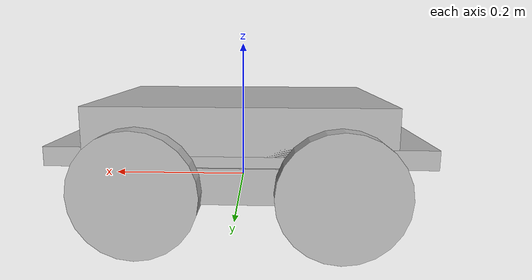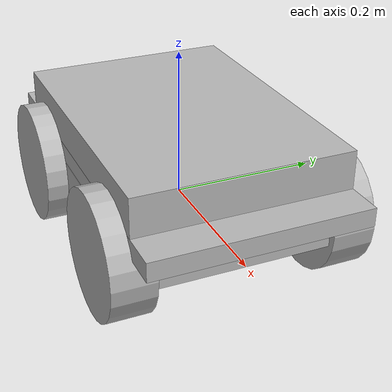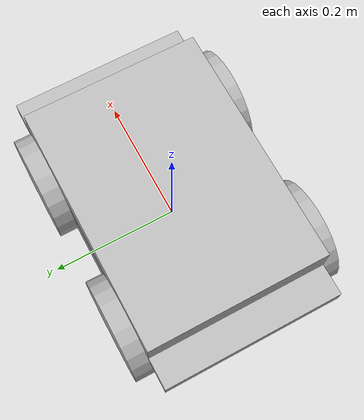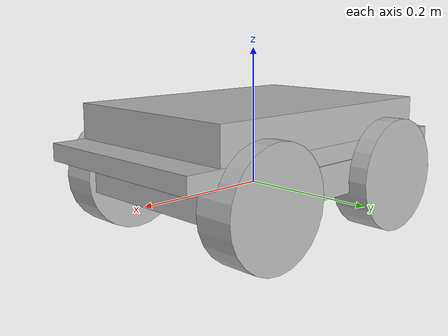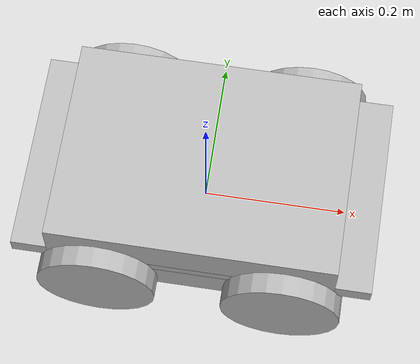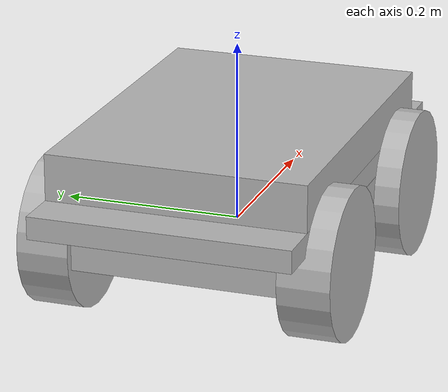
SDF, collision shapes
<?xml version="1.0" ?>
<sdf version="1.8">

  <model name="husky_seg_cam">

    <link name="base_link">
      <pose>0 0 0 0 0 0</pose>
      <inertial>
        <pose>-0.0002715 -0.0424725 0.0311645 0 -0 0</pose>
        <mass>5.133</mass>
        <inertia>
          <ixx>0.019244</ixx>
          <ixy>-0.000752</ixy>
          <ixz>-0.003771</ixz>
          <iyy>0.054497</iyy>
          <iyz>-0.000089</iyz>
          <izz>0.063638</izz>
        </inertia>
      </inertial>
      <collision name="base_link_collision">
        <pose>0 0 0.06 0 0 0</pose>
        <geometry>
          <box>
            <size>0.4937 0.28545 0.025</size>
          </box>
        </geometry>
      </collision>
      <collision name="base_link_collision_bottom">
        <pose>0 0 0.023 0 0 0</pose>
        <geometry>
          <box>
            <size>0.40 0.28545 0.0475</size>
          </box>
        </geometry>
      </collision>
      <collision name="base_link_collision_1">
        <pose>0 0 0.0928125 0 -0 0</pose>
        <geometry>
          <box>
            <size>0.39496 0.28545 0.061875</size>
          </box>
        </geometry>
      </collision>

      <visual name="base_link_visual">
        <pose>0 0 0 0 -0 0</pose>
        <geometry>
          <mesh>
            <scale>0.5 0.5 0.5</scale>
            <uri>https://fuel.ignitionrobotics.org/1.0/openrobotics/models/ctu_cras_norlab_husky_sensor_config_1/tip/files/meshes/base_link.dae</uri>
          </mesh>
        </geometry>
      </visual>
      <visual name="base_link_fixed_joint_lump__front_bumper_link_visual_3">
        <pose>0.24 0 0.0455 0 -0 0</pose>
        <geometry>
          <mesh>
            <scale>0.5 0.5 0.5</scale>
            <uri>https://fuel.ignitionrobotics.org/1.0/openrobotics/models/ctu_cras_norlab_husky_sensor_config_1/tip/files/meshes/bumper.dae</uri>
          </mesh>
        </geometry>
      </visual>
      <visual name="base_link_fixed_joint_lump__rear_bumper_link_visual_4">
        <pose>-0.24 0 0.0455 0 -0 3.14159</pose>
        <geometry>
          <mesh>
            <scale>0.5 0.5 0.5</scale>
            <uri>https://fuel.ignitionrobotics.org/1.0/openrobotics/models/ctu_cras_norlab_husky_sensor_config_1/tip/files/meshes/bumper.dae</uri>
          </mesh>
        </geometry>
      </visual>
      <visual name="base_link_fixed_joint_lump__top_chassis_link_visual_5">
        <pose>0 0 0 0 -0 0</pose>
        <geometry>
          <mesh>
            <scale>0.5 0.5 0.5</scale>
            <uri>https://fuel.ignitionrobotics.org/1.0/openrobotics/models/ctu_cras_norlab_husky_sensor_config_1/tip/files/meshes/top_chassis.dae</uri>
          </mesh>
        </geometry>
      </visual>

      <velocity_decay/>
      <self_collide>0</self_collide>
      <enable_wind>0</enable_wind>
      <kinematic>0</kinematic>

    </link>

    <link name="sensors_link">
      <!-- Position the sensors link at an appropriate height on top of the Husky -->

      <pose relative_to="base_link">0 0 0.25 0 0 0</pose> <!-- 缩放自0.5至0.25 -->

      <!-- Camera sensor definition -->
      <sensor name="rgbd_camera" type="rgbd_camera">
        <camera>
          <horizontal_fov>1.570796327</horizontal_fov>
          <image>
            <width>640</width>
            <height>480</height>
          </image>
          <clip>
            <near>0.1</near>
            <far>100</far>
          </clip>
          <lens>
            <intrinsics>
              <fx>320</fx>
              <fy>320</fy>
              <cx>320</cx>
              <cy>240</cy>
              <skew>0</skew>
            </intrinsics>
          </lens>
        </camera>
        <always_on>1</always_on>
        <update_rate>10</update_rate>
        <visualize>true</visualize>
        <!-- use default topic to enable multi robot -->
        <enable_metrics>true</enable_metrics>
      </sensor>

      <!-- Segmentation camera sensor definition -->
      <sensor name="semantic_segmentation_camera" type="segmentation">
        <camera>
          <segmentation_type>semantic</segmentation_type>
          <horizontal_fov>1.570796327</horizontal_fov>
          <image>
            <width>640</width>
            <height>480</height>
          </image>
          <clip>
            <near>0.1</near>
            <far>100</far>
          </clip>
          <lens>
            <intrinsics>
              <fx>320</fx>
              <fy>320</fy>
              <cx>320</cx>
              <cy>240</cy>
              <skew>0</skew>
            </intrinsics>
          </lens>
        </camera>
        <always_on>1</always_on>
        <update_rate>30</update_rate>
        <visualize>true</visualize>
      </sensor>
    </link>

    <!-- Joint to connect the sensors_link to the base_link of the Husky -->
    <joint name="sensors_joint" type="fixed">
      <parent>base_link</parent>
      <child>sensors_link</child>
      <pose>0 0 2.5 0 0 0</pose> <!-- 缩放自5至2.5 -->
    </joint>

    <link name="front_left_wheel_link">
      <pose relative_to="base_link">0.128 0.1427 0.01641 0 -0 0</pose>
      <inertial>
        <pose>0 0 0 0 -0 0</pose>
        <mass>0.329625</mass>
        <inertia>
          <ixx>0.000771</ixx>
          <ixy>0</ixy>
          <ixz>0</ixz>
          <iyy>0.001378</iyy>
          <iyz>0</iyz>
          <izz>0.000771</izz>
        </inertia>
      </inertial>
      <collision name="front_left_wheel_link_collision">
        <pose>0 0 0 1.5707963267948966 -0 0</pose>
        <geometry>
          <cylinder>
            <length>0.05715</length>
            <radius>0.08255</radius>
          </cylinder>
        </geometry>
        <surface>
          <contact>
            <ode>
              <kp>1e+07</kp>
              <kd>1</kd>
            </ode>
          </contact>
          <friction>
            <ode>
              <mu>0.3</mu>
              <mu2>0.3</mu2>
              <slip1>0.5</slip1>
              <slip2>0.5</slip2>
              <fdir1>1 0 0</fdir1>
              <fdir2>0 1 0</fdir2>
            </ode>
          </friction>
        </surface>
      </collision>
      <visual name="front_left_wheel_link_visual">
        <pose>0 0 0 0 -0 0</pose>
        <geometry>
          <mesh>
            <scale>0.5 0.5 0.5</scale>
            <uri>https://fuel.ignitionrobotics.org/1.0/openrobotics/models/ctu_cras_norlab_husky_sensor_config_1/tip/files/meshes/wheel.dae</uri>
          </mesh>
        </geometry>
      </visual>

      <gravity>1</gravity>
      <velocity_decay/>
    </link>
    <joint name="front_left_wheel_joint" type="revolute">
      <child>front_left_wheel_link</child>
      <parent>base_link</parent>
      <axis>
        <xyz>0 1 0</xyz>
        <limit>
          <lower>-1e+16</lower>
          <upper>1e+16</upper>
        </limit>
        <dynamics>
          <spring_reference>0</spring_reference>
          <spring_stiffness>0</spring_stiffness>
        </dynamics>
        <use_parent_model_frame>1</use_parent_model_frame>
      </axis>
    </joint>

    <link name="front_right_wheel_link">
      <pose relative_to="base_link">0.128 -0.1427 0.01641 0 -0 0</pose>
      <inertial>
        <pose>0 0 0 0 -0 0</pose>
        <mass>0.329625</mass>
        <inertia>
          <ixx>0.000771</ixx>
          <ixy>0</ixy>
          <ixz>0</ixz>
          <iyy>0.001378</iyy>
          <iyz>0</iyz>
          <izz>0.000771</izz>
        </inertia>
      </inertial>
      <collision name="front_right_wheel_link_collision">
        <pose>0 0 0 1.5707963267948966 -0 0</pose>
        <geometry>
          <cylinder>
            <length>0.05715</length>
            <radius>0.08255</radius>
          </cylinder>
        </geometry>
        <surface>
          <contact>
            <ode>
              <kp>1e+07</kp>
              <kd>1</kd>
            </ode>
          </contact>
          <friction>
            <ode>
              <mu>0.3</mu>
              <mu2>0.3</mu2>
              <slip1>0.5</slip1>
              <slip2>0.5</slip2>
              <fdir1>1 0 0</fdir1>
              <fdir2>0 1 0</fdir2>
            </ode>
          </friction>
        </surface>
      </collision>
      <visual name="front_right_wheel_link_visual">
        <pose>0 0 0 0 -0 0</pose>
        <geometry>
          <mesh>
            <scale>0.5 0.5 0.5</scale>
            <uri>https://fuel.ignitionrobotics.org/1.0/openrobotics/models/ctu_cras_norlab_husky_sensor_config_1/tip/files/meshes/wheel.dae</uri>
          </mesh>
        </geometry>
      </visual>
      <gravity>1</gravity>
      <velocity_decay/>
    </link>
    <joint name="front_right_wheel_joint" type="revolute">
      <child>front_right_wheel_link</child>
      <parent>base_link</parent>
      <axis>
        <xyz>0 1 0</xyz>
        <limit>
          <lower>-1e+16</lower>
          <upper>1e+16</upper>
        </limit>
        <dynamics>
          <spring_reference>0</spring_reference>
          <spring_stiffness>0</spring_stiffness>
        </dynamics>
        <use_parent_model_frame>1</use_parent_model_frame>
      </axis>
    </joint>

    <link name="rear_left_wheel_link">
      <pose relative_to="base_link">-0.128 0.1427 0.01641 0 -0 0</pose>
      <inertial>
        <pose>0 0 0 0 -0 0</pose>
        <mass>0.329625</mass>
        <inertia>
          <ixx>0.000771</ixx>
          <ixy>0</ixy>
          <ixz>0</ixz>
          <iyy>0.001378</iyy>
          <iyz>0</iyz>
          <izz>0.000771</izz>
        </inertia>
      </inertial>
      <collision name="rear_left_wheel_link_collision">
        <pose>0 0 0 1.5707963267948966 -0 0</pose>
        <geometry>
          <cylinder>
            <length>0.05715</length>
            <radius>0.08255</radius>
          </cylinder>
        </geometry>
        <surface>
          <contact>
            <ode>
              <kp>1e+07</kp>
              <kd>1</kd>
            </ode>
          </contact>
          <friction>
            <ode>
              <mu>1</mu>
              <mu2>1</mu2>
              <slip1>0.00062</slip1>
              <slip2>0</slip2>
              <fdir1>1 0 0</fdir1>
              <fdir2>0 1 0</fdir2>
            </ode>
          </friction>
        </surface>
      </collision>
      <visual name="rear_left_wheel_link_visual">
        <pose>0 0 0 0 -0 0</pose>
        <geometry>
          <mesh>
            <scale>0.5 0.5 0.5</scale>
            <uri>https://fuel.ignitionrobotics.org/1.0/openrobotics/models/ctu_cras_norlab_husky_sensor_config_1/tip/files/meshes/wheel.dae</uri>
          </mesh>
        </geometry>
      </visual>
      <gravity>1</gravity>
      <velocity_decay/>
    </link>
    <joint name="rear_left_wheel_joint" type="revolute">
      <child>rear_left_wheel_link</child>
      <parent>base_link</parent>
      <axis>
        <xyz>0 1 0</xyz>
        <limit>
          <lower>-1e+16</lower>
          <upper>1e+16</upper>
        </limit>
        <dynamics>
          <spring_reference>0</spring_reference>
          <spring_stiffness>0</spring_stiffness>
        </dynamics>
        <use_parent_model_frame>1</use_parent_model_frame>
      </axis>
    </joint>
    <link name="rear_right_wheel_link">
      <pose relative_to="base_link">-0.128 -0.1427 0.01641 0 -0 0</pose>
      <inertial>
        <pose>0 0 0 0 -0 0</pose>
        <mass>0.329625</mass>
        <inertia>
          <ixx>0.000771</ixx>
          <ixy>0</ixy>
          <ixz>0</ixz>
          <iyy>0.001378</iyy>
          <iyz>0</iyz>
          <izz>0.000771</izz>
        </inertia>
      </inertial>
      <collision name="rear_right_wheel_link_collision">
        <pose>0 0 0 1.5707963267948966 -0 0</pose>
        <geometry>
          <cylinder>
            <length>0.05715</length>
            <radius>0.08255</radius>
          </cylinder>
        </geometry>
        <surface>
          <contact>
            <ode>
              <kp>1e+07</kp>
              <kd>1</kd>
            </ode>
          </contact>
          <friction>
            <ode>
              <mu>1</mu>
              <mu2>1</mu2>
              <slip1>0.00062</slip1>
              <slip2>0</slip2>
              <fdir1>1 0 0</fdir1>
              <fdir2>0 1 0</fdir2>
            </ode>
          </friction>
        </surface>
      </collision>
      <visual name="rear_right_wheel_link_visual">
        <pose>0 0 0 0 -0 0</pose>
        <geometry>
          <mesh>
            <scale>0.5 0.5 0.5</scale>
            <uri>https://fuel.ignitionrobotics.org/1.0/openrobotics/models/ctu_cras_norlab_husky_sensor_config_1/tip/files/meshes/wheel.dae</uri>
          </mesh>
        </geometry>
      </visual>
      <gravity>1</gravity>
      <velocity_decay/>
    </link>
    <joint name="rear_right_wheel_joint" type="revolute">
      <child>rear_right_wheel_link</child>
      <parent>base_link</parent>
      <axis>
        <xyz>0 1 0</xyz>
        <limit>
          <lower>-1e+16</lower>
          <upper>1e+16</upper>
        </limit>
        <dynamics>
          <spring_reference>0</spring_reference>
          <spring_stiffness>0</spring_stiffness>
        </dynamics>
        <use_parent_model_frame>1</use_parent_model_frame>
      </axis>
    </joint>

    <static>0</static>
    <plugin
      filename="ignition-gazebo-diff-drive-system"
      name="ignition::gazebo::systems::DiffDrive">
      <!-- Ensure the joint names match those defined in your model -->
      <left_joint>rear_left_wheel_joint</left_joint>
      <right_joint>rear_right_wheel_joint</right_joint>
      <!-- Adjust wheel separation and radius based on your model's specifications -->
      <wheel_separation>0.2854</wheel_separation> <!-- 缩放自0.5708 -->
      <wheel_radius>0.09141</wheel_radius> <!-- 缩放自0.18282 -->
      <odom_publish_frequency>1</odom_publish_frequency>
      <max_linear_acceleration>2</max_linear_acceleration>
      <min_linear_acceleration>-2</min_linear_acceleration>
      <max_angular_acceleration>2</max_angular_acceleration>
      <min_angular_acceleration>-2</min_angular_acceleration>
      <max_linear_velocity>10</max_linear_velocity> <!-- Adjust based on desired max speed -->
      <min_linear_velocity>-10</min_linear_velocity>
      <max_angular_velocity>10</max_angular_velocity>
      <min_angular_velocity>-10</min_angular_velocity>
      <!-- Add topic to control the robot using keyboard plugin output -->
    </plugin>
    <plugin
      filename="ignition-gazebo-joint-state-publisher-system"
      name="ignition::gazebo::systems::JointStatePublisher">
    </plugin>
    <!-- Pose Publisher Plugin for Husky Model -->
    <plugin
      filename="ignition-gazebo-pose-publisher-system"
      name="ignition::gazebo::systems::PosePublisher">
      <publish_link_pose>false</publish_link_pose>
      <publish_sensor_pose>false</publish_sensor_pose>
      <publish_collision_pose>false</publish_collision_pose>
      <publish_visual_pose>false</publish_visual_pose>
      <publish_nested_model_pose>true</publish_nested_model_pose>
      <use_pose_vector_msg>false</use_pose_vector_msg> <!-- Use standard pose message format -->
    </plugin>

  </model>

</sdf>
